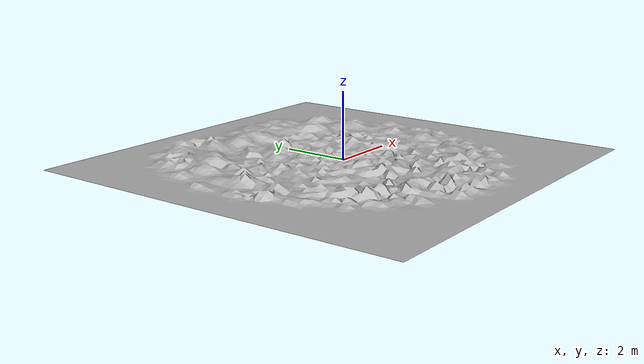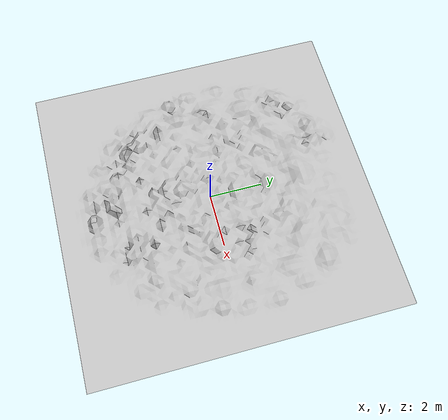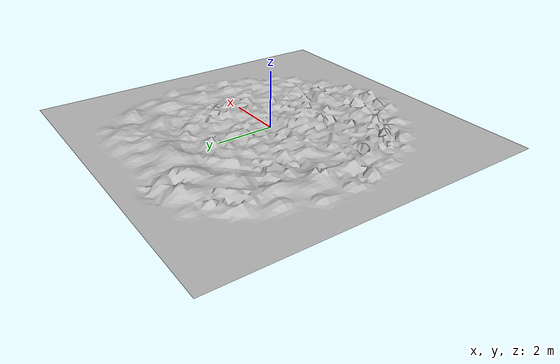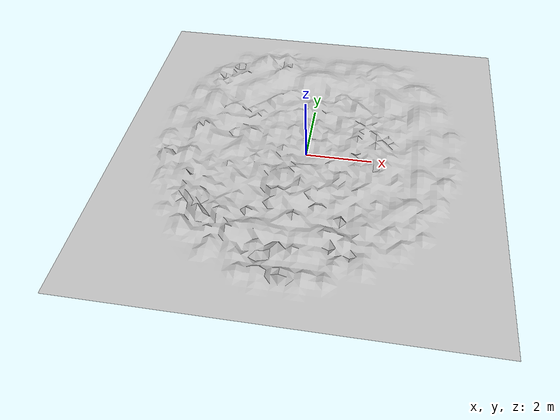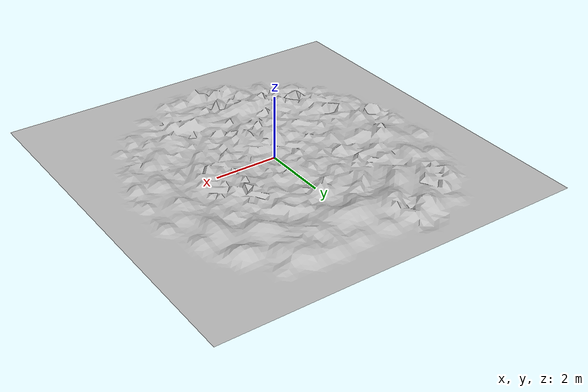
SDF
<?xml version="1.0" ?>
<sdf version='1.7'>
  <world name='default'>
    <light name='sun' type='directional'>
      <cast_shadows>1</cast_shadows>
      <pose>0 0 10 0 -0 0</pose>
      <diffuse>0.8 0.8 0.8 1</diffuse>
      <specular>0.2 0.2 0.2 1</specular>
      <attenuation>
        <range>1000</range>
        <constant>0.9</constant>
        <linear>0.01</linear>
        <quadratic>0.001</quadratic>
      </attenuation>
      <direction>-0.5 0.1 -0.9</direction>
      <spot>
        <inner_angle>0</inner_angle>
        <outer_angle>0</outer_angle>
        <falloff>0</falloff>
      </spot>
    </light>
    <gravity>0 0 -9.8</gravity>
    <magnetic_field>6e-06 2.3e-05 -4.2e-05</magnetic_field>
    <atmosphere type='adiabatic'/>
    <physics type='ode'>
      <max_step_size>0.005</max_step_size>
      <real_time_factor>1</real_time_factor>
      <real_time_update_rate>200</real_time_update_rate>
    </physics>
    <scene>
      <ambient>0.4 0.4 0.4 1</ambient>
      <background>0.7 0.7 0.7 1</background>
      <shadows>1</shadows>
      <origin_visual>0</origin_visual>
      <grid>0</grid>
    </scene>
    <wind/>
    <spherical_coordinates>
      <surface_model>EARTH_WGS84</surface_model>
      <latitude_deg>0</latitude_deg>
      <longitude_deg>0</longitude_deg>
      <elevation>0</elevation>
      <heading_deg>0</heading_deg>
    </spherical_coordinates>
    <model name='sphere'>
      <static>1</static>
      <pose>0 0 0 0 -0 0</pose>
      <link name='link'>
        <pose>0 0 0 0 -0 0</pose>
        <collision name='collision'>
          <geometry>
            <mesh>
              <uri>model://hills/meshes/hilly.dae</uri>
            </mesh>
          </geometry>
          <max_contacts>10</max_contacts>
          <surface>
            <contact>
              <ode/>
            </contact>
            <bounce/>
            <friction>
              <torsional>
                <ode/>
              </torsional>
              <ode/>
            </friction>
          </surface>
        </collision>
        <visual name='visual'>
          <geometry>
            <mesh>
              <uri>model://hills/meshes/hilly.dae</uri>
            </mesh>
          </geometry>
        </visual>
        <self_collide>0</self_collide>
        <enable_wind>0</enable_wind>
        <kinematic>0</kinematic>
      </link>
    </model>
    <plugin name="revolve-world" filename="libWorldControlPlugin.so" />
  </world>
</sdf>
